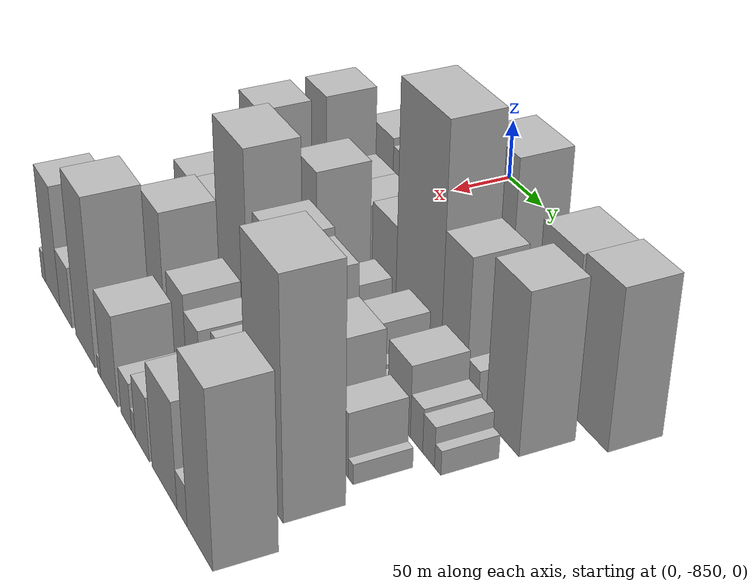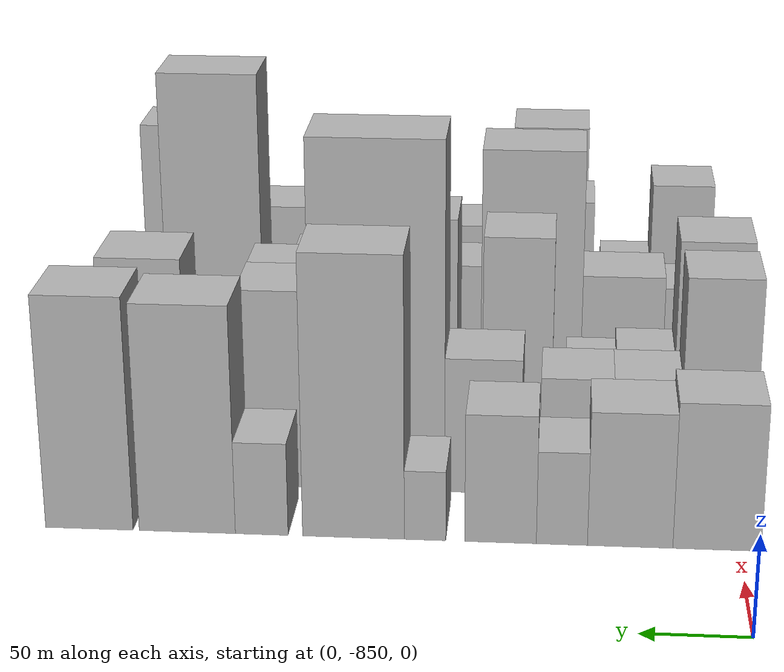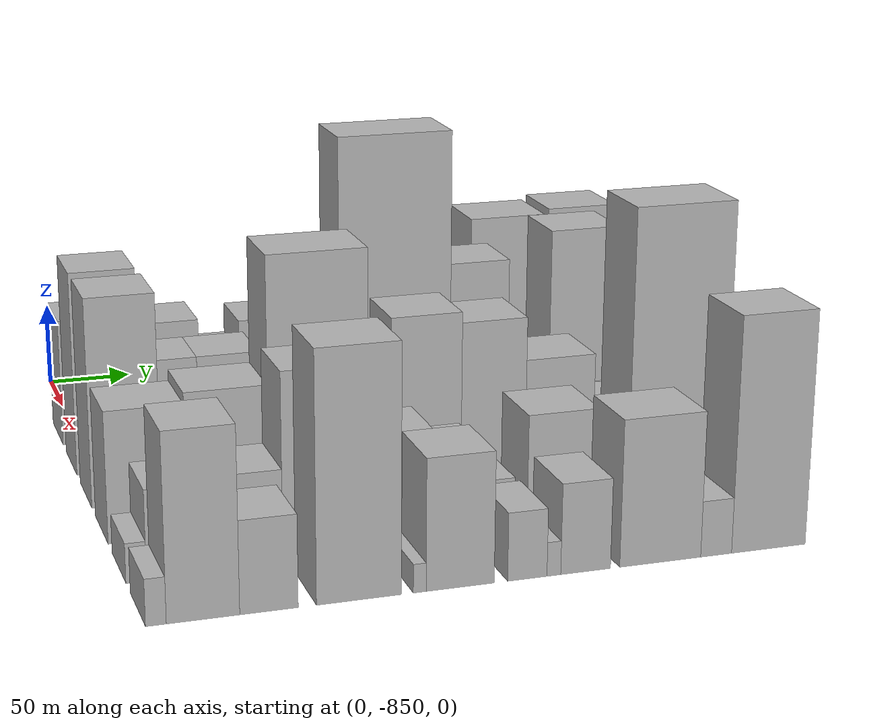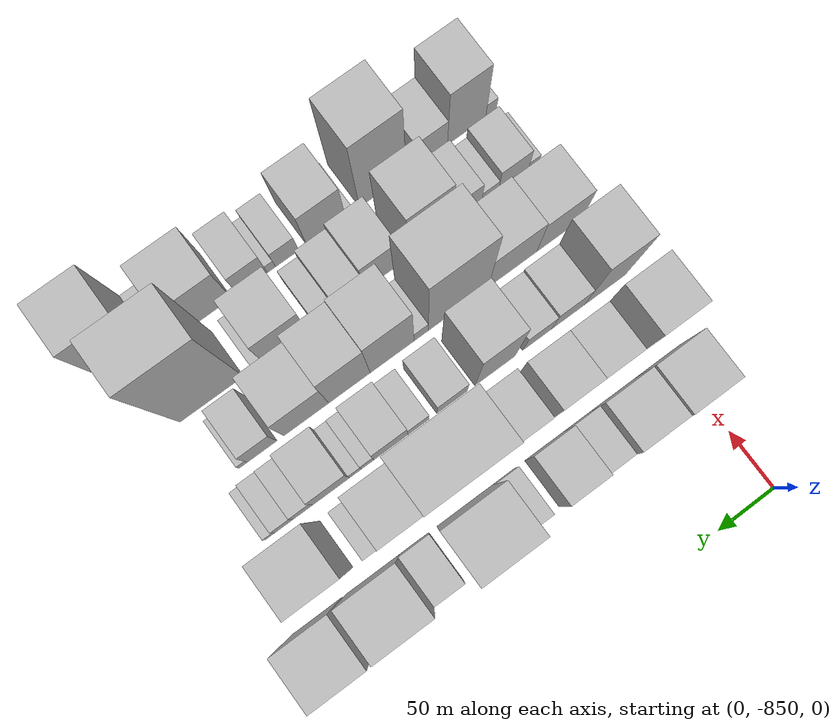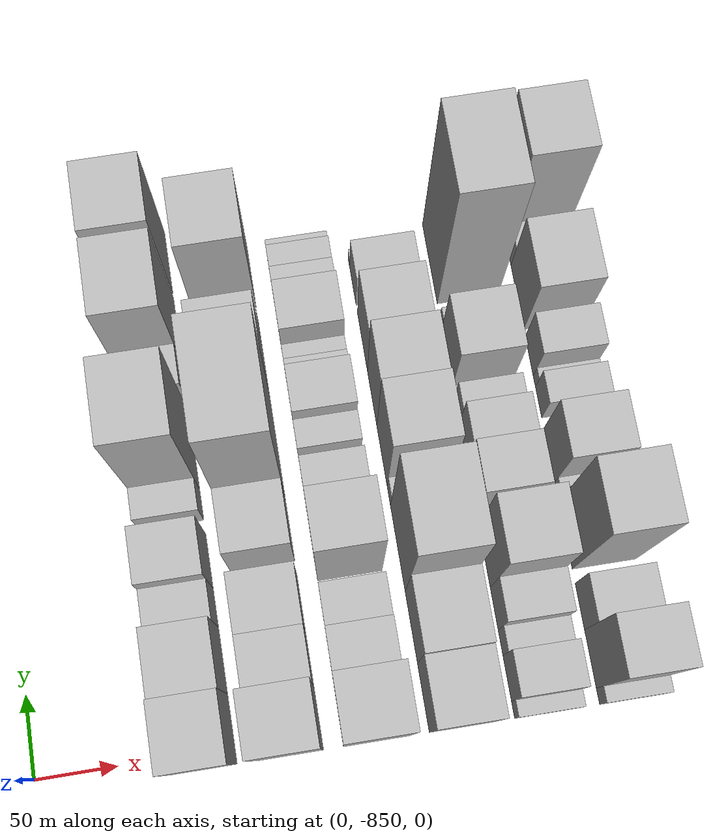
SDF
<sdf version="1.6">
 <world name="default">
  <model name="building_1">
   <static>1</static>
   <pose>100.0000 -839.2656 0 0.000000 0.000000 0.000000</pose>
   <link name="link">
    <pose>0 0 37.50 0 0 0</pose>
    <collision name="collision"><geometry><box><size>40.0000 41.4688 75.0000</size></box></geometry></collision>
    <visual name="visual">
     <cast_shadows>0</cast_shadows>
     <geometry><box><size>40.0000 41.4688 75.0000</size></box></geometry>
     <material>
      <script>
       <uri>model://HANNAS_wall/materials/scripts</uri>
       <uri>model://HANNAS_wall/materials/textures</uri>
       <name>vrc/HANNAS_wall</name>
      </script>
     </material>
    </visual>
   </link>
  </model>
  <model name="building_2">
   <static>1</static>
   <pose>100.0000 -798.3880 0 0.000000 0.000000 0.000000</pose>
   <link name="link">
    <pose>0 0 34.50 0 0 0</pose>
    <collision name="collision"><geometry><box><size>40.0000 40.2863 69.0000</size></box></geometry></collision>
    <visual name="visual">
     <cast_shadows>0</cast_shadows>
     <geometry><box><size>40.0000 40.2863 69.0000</size></box></geometry>
     <material>
      <script>
       <uri>model://HANNAS_wall/materials/scripts</uri>
       <uri>model://HANNAS_wall/materials/textures</uri>
       <name>vrc/HANNAS_wall</name>
      </script>
     </material>
    </visual>
   </link>
  </model>
  <model name="building_3">
   <static>1</static>
   <pose>100.0000 -766.1409 0 0.000000 0.000000 0.000000</pose>
   <link name="link">
    <pose>0 0 24.00 0 0 0</pose>
    <collision name="collision"><geometry><box><size>40.0000 24.2079 48.0000</size></box></geometry></collision>
    <visual name="visual">
     <cast_shadows>0</cast_shadows>
     <geometry><box><size>40.0000 24.2079 48.0000</size></box></geometry>
     <material>
      <script>
       <uri>model://HANNAS_wall/materials/scripts</uri>
       <uri>model://HANNAS_wall/materials/textures</uri>
       <name>vrc/HANNAS_wall</name>
      </script>
     </material>
    </visual>
   </link>
  </model>
  <model name="building_4">
   <static>1</static>
   <pose>100.0000 -737.0001 0 0.000000 0.000000 0.000000</pose>
   <link name="link">
    <pose>0 0 33.00 0 0 0</pose>
    <collision name="collision"><geometry><box><size>40.0000 34.0739 66.0000</size></box></geometry></collision>
    <visual name="visual">
     <cast_shadows>0</cast_shadows>
     <geometry><box><size>40.0000 34.0739 66.0000</size></box></geometry>
     <material>
      <script>
       <uri>model://HANNAS_wall/materials/scripts</uri>
       <uri>model://HANNAS_wall/materials/textures</uri>
       <name>vrc/HANNAS_wall</name>
      </script>
     </material>
    </visual>
   </link>
  </model>
  <model name="building_5">
   <static>1</static>
   <pose>100.0000 -701.0439 0 0.000000 0.000000 0.000000</pose>
   <link name="link">
    <pose>0 0 18.00 0 0 0</pose>
    <collision name="collision"><geometry><box><size>40.0000 19.8385 36.0000</size></box></geometry></collision>
    <visual name="visual">
     <cast_shadows>0</cast_shadows>
     <geometry><box><size>40.0000 19.8385 36.0000</size></box></geometry>
     <material>
      <script>
       <uri>model://HANNAS_wall/materials/scripts</uri>
       <uri>model://HANNAS_wall/materials/textures</uri>
       <name>vrc/HANNAS_wall</name>
      </script>
     </material>
    </visual>
   </link>
  </model>
  <model name="building_6">
   <static>1</static>
   <pose>100.0000 -666.7250 0 0.000000 0.000000 0.000000</pose>
   <link name="link">
    <pose>0 0 72.00 0 0 0</pose>
    <collision name="collision"><geometry><box><size>40.0000 48.7993 144.0000</size></box></geometry></collision>
    <visual name="visual">
     <cast_shadows>0</cast_shadows>
     <geometry><box><size>40.0000 48.7993 144.0000</size></box></geometry>
     <material>
      <script>
       <uri>model://HANNAS_wall/materials/scripts</uri>
       <uri>model://HANNAS_wall/materials/textures</uri>
       <name>vrc/HANNAS_wall</name>
      </script>
     </material>
    </visual>
   </link>
  </model>
  <model name="building_7">
   <static>1</static>
   <pose>100.0000 -622.5861 0 0.000000 0.000000 0.000000</pose>
   <link name="link">
    <pose>0 0 24.00 0 0 0</pose>
    <collision name="collision"><geometry><box><size>40.0000 25.4784 48.0000</size></box></geometry></collision>
    <visual name="visual">
     <cast_shadows>0</cast_shadows>
     <geometry><box><size>40.0000 25.4784 48.0000</size></box></geometry>
     <material>
      <script>
       <uri>model://HANNAS_wall/materials/scripts</uri>
       <uri>model://HANNAS_wall/materials/textures</uri>
       <name>vrc/HANNAS_wall</name>
      </script>
     </material>
    </visual>
   </link>
  </model>
  <model name="building_8">
   <static>1</static>
   <pose>100.0000 -586.5119 0 0.000000 0.000000 0.000000</pose>
   <link name="link">
    <pose>0 0 58.50 0 0 0</pose>
    <collision name="collision"><geometry><box><size>40.0000 46.6699 117.0000</size></box></geometry></collision>
    <visual name="visual">
     <cast_shadows>0</cast_shadows>
     <geometry><box><size>40.0000 46.6699 117.0000</size></box></geometry>
     <material>
      <script>
       <uri>model://HANNAS_wall/materials/scripts</uri>
       <uri>model://HANNAS_wall/materials/textures</uri>
       <name>vrc/HANNAS_wall</name>
      </script>
     </material>
    </visual>
   </link>
  </model>
  <model name="building_9">
   <static>1</static>
   <pose>100.0000 -538.8416 0 0.000000 0.000000 0.000000</pose>
   <link name="link">
    <pose>0 0 60.00 0 0 0</pose>
    <collision name="collision"><geometry><box><size>40.0000 42.6708 120.0000</size></box></geometry></collision>
    <visual name="visual">
     <cast_shadows>0</cast_shadows>
     <geometry><box><size>40.0000 42.6708 120.0000</size></box></geometry>
     <material>
      <script>
       <uri>model://HANNAS_wall/materials/scripts</uri>
       <uri>model://HANNAS_wall/materials/textures</uri>
       <name>vrc/HANNAS_wall</name>
      </script>
     </material>
    </visual>
   </link>
  </model>
  <model name="building_50">
   <static>1</static>
   <pose>152.0000 -841.6361 0 0.000000 0.000000 0.000000</pose>
   <link name="link">
    <pose>0 0 58.50 0 0 0</pose>
    <collision name="collision"><geometry><box><size>40.0000 36.7278 117.0000</size></box></geometry></collision>
    <visual name="visual">
     <cast_shadows>0</cast_shadows>
     <geometry><box><size>40.0000 36.7278 117.0000</size></box></geometry>
     <material>
      <script>
       <uri>model://HANNAS_wall/materials/scripts</uri>
       <uri>model://HANNAS_wall/materials/textures</uri>
       <name>vrc/HANNAS_wall</name>
      </script>
     </material>
    </visual>
   </link>
  </model>
  <model name="building_51">
   <static>1</static>
   <pose>152.0000 -806.7271 0 0.000000 0.000000 0.000000</pose>
   <link name="link">
    <pose>0 0 31.50 0 0 0</pose>
    <collision name="collision"><geometry><box><size>40.0000 33.0901 63.0000</size></box></geometry></collision>
    <visual name="visual">
     <cast_shadows>0</cast_shadows>
     <geometry><box><size>40.0000 33.0901 63.0000</size></box></geometry>
     <material>
      <script>
       <uri>model://HANNAS_wall/materials/scripts</uri>
       <uri>model://HANNAS_wall/materials/textures</uri>
       <name>vrc/HANNAS_wall</name>
      </script>
     </material>
    </visual>
   </link>
  </model>
  <model name="building_52">
   <static>1</static>
   <pose>152.0000 -772.2572 0 0.000000 0.000000 0.000000</pose>
   <link name="link">
    <pose>0 0 31.50 0 0 0</pose>
    <collision name="collision"><geometry><box><size>40.0000 35.8498 63.0000</size></box></geometry></collision>
    <visual name="visual">
     <cast_shadows>0</cast_shadows>
     <geometry><box><size>40.0000 35.8498 63.0000</size></box></geometry>
     <material>
      <script>
       <uri>model://HANNAS_wall/materials/scripts</uri>
       <uri>model://HANNAS_wall/materials/textures</uri>
       <name>vrc/HANNAS_wall</name>
      </script>
     </material>
    </visual>
   </link>
  </model>
  <model name="building_53">
   <static>1</static>
   <pose>152.0000 -726.2675 0 0.000000 0.000000 0.000000</pose>
   <link name="link">
    <pose>0 0 36.00 0 0 0</pose>
    <collision name="collision"><geometry><box><size>40.0000 38.1297 72.0000</size></box></geometry></collision>
    <visual name="visual">
     <cast_shadows>0</cast_shadows>
     <geometry><box><size>40.0000 38.1297 72.0000</size></box></geometry>
     <material>
      <script>
       <uri>model://HANNAS_wall/materials/scripts</uri>
       <uri>model://HANNAS_wall/materials/textures</uri>
       <name>vrc/HANNAS_wall</name>
      </script>
     </material>
    </visual>
   </link>
  </model>
  <model name="building_54">
   <static>1</static>
   <pose>152.0000 -673.6526 0 0.000000 0.000000 0.000000</pose>
   <link name="link">
    <pose>0 0 91.50 0 0 0</pose>
    <collision name="collision"><geometry><box><size>40.0000 67.1001 183.0000</size></box></geometry></collision>
    <visual name="visual">
     <cast_shadows>0</cast_shadows>
     <geometry><box><size>40.0000 67.1001 183.0000</size></box></geometry>
     <material>
      <script>
       <uri>model://HANNAS_wall/materials/scripts</uri>
       <uri>model://HANNAS_wall/materials/textures</uri>
       <name>vrc/HANNAS_wall</name>
      </script>
     </material>
    </visual>
   </link>
  </model>
  <model name="building_55">
   <static>1</static>
   <pose>152.0000 -622.2448 0 0.000000 0.000000 0.000000</pose>
   <link name="link">
    <pose>0 0 52.50 0 0 0</pose>
    <collision name="collision"><geometry><box><size>40.0000 35.7155 105.0000</size></box></geometry></collision>
    <visual name="visual">
     <cast_shadows>0</cast_shadows>
     <geometry><box><size>40.0000 35.7155 105.0000</size></box></geometry>
     <material>
      <script>
       <uri>model://HANNAS_wall/materials/scripts</uri>
       <uri>model://HANNAS_wall/materials/textures</uri>
       <name>vrc/HANNAS_wall</name>
      </script>
     </material>
    </visual>
   </link>
  </model>
  <model name="building_56">
   <static>1</static>
   <pose>152.0000 -596.3310 0 0.000000 0.000000 0.000000</pose>
   <link name="link">
    <pose>0 0 15.00 0 0 0</pose>
    <collision name="collision"><geometry><box><size>40.0000 16.1122 30.0000</size></box></geometry></collision>
    <visual name="visual">
     <cast_shadows>0</cast_shadows>
     <geometry><box><size>40.0000 16.1122 30.0000</size></box></geometry>
     <material>
      <script>
       <uri>model://HANNAS_wall/materials/scripts</uri>
       <uri>model://HANNAS_wall/materials/textures</uri>
       <name>vrc/HANNAS_wall</name>
      </script>
     </material>
    </visual>
   </link>
  </model>
  <model name="building_57">
   <static>1</static>
   <pose>152.0000 -557.2181 0 0.000000 0.000000 0.000000</pose>
   <link name="link">
    <pose>0 0 60.00 0 0 0</pose>
    <collision name="collision"><geometry><box><size>40.0000 42.1136 120.0000</size></box></geometry></collision>
    <visual name="visual">
     <cast_shadows>0</cast_shadows>
     <geometry><box><size>40.0000 42.1136 120.0000</size></box></geometry>
     <material>
      <script>
       <uri>model://HANNAS_wall/materials/scripts</uri>
       <uri>model://HANNAS_wall/materials/textures</uri>
       <name>vrc/HANNAS_wall</name>
      </script>
     </material>
    </visual>
   </link>
  </model>
  <model name="building_100">
   <static>1</static>
   <pose>204.0000 -841.0967 0 0.000000 0.000000 0.000000</pose>
   <link name="link">
    <pose>0 0 58.50 0 0 0</pose>
    <collision name="collision"><geometry><box><size>40.0000 37.8066 117.0000</size></box></geometry></collision>
    <visual name="visual">
     <cast_shadows>0</cast_shadows>
     <geometry><box><size>40.0000 37.8066 117.0000</size></box></geometry>
     <material>
      <script>
       <uri>model://HANNAS_wall/materials/scripts</uri>
       <uri>model://HANNAS_wall/materials/textures</uri>
       <name>vrc/HANNAS_wall</name>
      </script>
     </material>
    </visual>
   </link>
  </model>
  <model name="building_101">
   <static>1</static>
   <pose>204.0000 -807.2880 0 0.000000 0.000000 0.000000</pose>
   <link name="link">
    <pose>0 0 27.00 0 0 0</pose>
    <collision name="collision"><geometry><box><size>40.0000 29.8107 54.0000</size></box></geometry></collision>
    <visual name="visual">
     <cast_shadows>0</cast_shadows>
     <geometry><box><size>40.0000 29.8107 54.0000</size></box></geometry>
     <material>
      <script>
       <uri>model://HANNAS_wall/materials/scripts</uri>
       <uri>model://HANNAS_wall/materials/textures</uri>
       <name>vrc/HANNAS_wall</name>
      </script>
     </material>
    </visual>
   </link>
  </model>
  <model name="building_102">
   <static>1</static>
   <pose>204.0000 -779.4804 0 0.000000 0.000000 0.000000</pose>
   <link name="link">
    <pose>0 0 24.00 0 0 0</pose>
    <collision name="collision"><geometry><box><size>40.0000 25.8045 48.0000</size></box></geometry></collision>
    <visual name="visual">
     <cast_shadows>0</cast_shadows>
     <geometry><box><size>40.0000 25.8045 48.0000</size></box></geometry>
     <material>
      <script>
       <uri>model://HANNAS_wall/materials/scripts</uri>
       <uri>model://HANNAS_wall/materials/textures</uri>
       <name>vrc/HANNAS_wall</name>
      </script>
     </material>
    </visual>
   </link>
  </model>
  <model name="building_103">
   <static>1</static>
   <pose>204.0000 -741.5397 0 0.000000 0.000000 0.000000</pose>
   <link name="link">
    <pose>0 0 58.50 0 0 0</pose>
    <collision name="collision"><geometry><box><size>40.0000 36.0768 117.0000</size></box></geometry></collision>
    <visual name="visual">
     <cast_shadows>0</cast_shadows>
     <geometry><box><size>40.0000 36.0768 117.0000</size></box></geometry>
     <material>
      <script>
       <uri>model://HANNAS_wall/materials/scripts</uri>
       <uri>model://HANNAS_wall/materials/textures</uri>
       <name>vrc/HANNAS_wall</name>
      </script>
     </material>
    </visual>
   </link>
  </model>
  <model name="building_104">
   <static>1</static>
   <pose>204.0000 -703.0891 0 0.000000 0.000000 0.000000</pose>
   <link name="link">
    <pose>0 0 22.50 0 0 0</pose>
    <collision name="collision"><geometry><box><size>40.0000 26.8244 45.0000</size></box></geometry></collision>
    <visual name="visual">
     <cast_shadows>0</cast_shadows>
     <geometry><box><size>40.0000 26.8244 45.0000</size></box></geometry>
     <material>
      <script>
       <uri>model://HANNAS_wall/materials/scripts</uri>
       <uri>model://HANNAS_wall/materials/textures</uri>
       <name>vrc/HANNAS_wall</name>
      </script>
     </material>
    </visual>
   </link>
  </model>
  <model name="building_105">
   <static>1</static>
   <pose>204.0000 -673.4502 0 0.000000 0.000000 0.000000</pose>
   <link name="link">
    <pose>0 0 16.50 0 0 0</pose>
    <collision name="collision"><geometry><box><size>40.0000 18.4534 33.0000</size></box></geometry></collision>
    <visual name="visual">
     <cast_shadows>0</cast_shadows>
     <geometry><box><size>40.0000 18.4534 33.0000</size></box></geometry>
     <material>
      <script>
       <uri>model://HANNAS_wall/materials/scripts</uri>
       <uri>model://HANNAS_wall/materials/textures</uri>
       <name>vrc/HANNAS_wall</name>
      </script>
     </material>
    </visual>
   </link>
  </model>
  <model name="building_106">
   <static>1</static>
   <pose>204.0000 -649.2735 0 0.000000 0.000000 0.000000</pose>
   <link name="link">
    <pose>0 0 25.50 0 0 0</pose>
    <collision name="collision"><geometry><box><size>40.0000 29.9001 51.0000</size></box></geometry></collision>
    <visual name="visual">
     <cast_shadows>0</cast_shadows>
     <geometry><box><size>40.0000 29.9001 51.0000</size></box></geometry>
     <material>
      <script>
       <uri>model://HANNAS_wall/materials/scripts</uri>
       <uri>model://HANNAS_wall/materials/textures</uri>
       <name>vrc/HANNAS_wall</name>
      </script>
     </material>
    </visual>
   </link>
  </model>
  <model name="building_107">
   <static>1</static>
   <pose>204.0000 -628.8190 0 0.000000 0.000000 0.000000</pose>
   <link name="link">
    <pose>0 0 13.50 0 0 0</pose>
    <collision name="collision"><geometry><box><size>40.0000 11.0089 27.0000</size></box></geometry></collision>
    <visual name="visual">
     <cast_shadows>0</cast_shadows>
     <geometry><box><size>40.0000 11.0089 27.0000</size></box></geometry>
     <material>
      <script>
       <uri>model://HANNAS_wall/materials/scripts</uri>
       <uri>model://HANNAS_wall/materials/textures</uri>
       <name>vrc/HANNAS_wall</name>
      </script>
     </material>
    </visual>
   </link>
  </model>
  <model name="building_108">
   <static>1</static>
   <pose>204.0000 -618.1951 0 0.000000 0.000000 0.000000</pose>
   <link name="link">
    <pose>0 0 12.00 0 0 0</pose>
    <collision name="collision"><geometry><box><size>40.0000 10.2389 24.0000</size></box></geometry></collision>
    <visual name="visual">
     <cast_shadows>0</cast_shadows>
     <geometry><box><size>40.0000 10.2389 24.0000</size></box></geometry>
     <material>
      <script>
       <uri>model://HANNAS_wall/materials/scripts</uri>
       <uri>model://HANNAS_wall/materials/textures</uri>
       <name>vrc/HANNAS_wall</name>
      </script>
     </material>
    </visual>
   </link>
  </model>
  <model name="building_109">
   <static>1</static>
   <pose>204.0000 -597.1276 0 0.000000 0.000000 0.000000</pose>
   <link name="link">
    <pose>0 0 27.00 0 0 0</pose>
    <collision name="collision"><geometry><box><size>40.0000 31.8962 54.0000</size></box></geometry></collision>
    <visual name="visual">
     <cast_shadows>0</cast_shadows>
     <geometry><box><size>40.0000 31.8962 54.0000</size></box></geometry>
     <material>
      <script>
       <uri>model://HANNAS_wall/materials/scripts</uri>
       <uri>model://HANNAS_wall/materials/textures</uri>
       <name>vrc/HANNAS_wall</name>
      </script>
     </material>
    </visual>
   </link>
  </model>
  <model name="building_110">
   <static>1</static>
   <pose>204.0000 -572.6764 0 0.000000 0.000000 0.000000</pose>
   <link name="link">
    <pose>0 0 16.50 0 0 0</pose>
    <collision name="collision"><geometry><box><size>40.0000 17.0060 33.0000</size></box></geometry></collision>
    <visual name="visual">
     <cast_shadows>0</cast_shadows>
     <geometry><box><size>40.0000 17.0060 33.0000</size></box></geometry>
     <material>
      <script>
       <uri>model://HANNAS_wall/materials/scripts</uri>
       <uri>model://HANNAS_wall/materials/textures</uri>
       <name>vrc/HANNAS_wall</name>
      </script>
     </material>
    </visual>
   </link>
  </model>
  <model name="building_111">
   <static>1</static>
   <pose>204.0000 -556.3129 0 0.000000 0.000000 0.000000</pose>
   <link name="link">
    <pose>0 0 15.00 0 0 0</pose>
    <collision name="collision"><geometry><box><size>40.0000 15.7212 30.0000</size></box></geometry></collision>
    <visual name="visual">
     <cast_shadows>0</cast_shadows>
     <geometry><box><size>40.0000 15.7212 30.0000</size></box></geometry>
     <material>
      <script>
       <uri>model://HANNAS_wall/materials/scripts</uri>
       <uri>model://HANNAS_wall/materials/textures</uri>
       <name>vrc/HANNAS_wall</name>
      </script>
     </material>
    </visual>
   </link>
  </model>
  <model name="building_112">
   <static>1</static>
   <pose>204.0000 -544.2446 0 0.000000 0.000000 0.000000</pose>
   <link name="link">
    <pose>0 0 9.00 0 0 0</pose>
    <collision name="collision"><geometry><box><size>40.0000 8.4153 18.0000</size></box></geometry></collision>
    <visual name="visual">
     <cast_shadows>0</cast_shadows>
     <geometry><box><size>40.0000 8.4153 18.0000</size></box></geometry>
     <material>
      <script>
       <uri>model://HANNAS_wall/materials/scripts</uri>
       <uri>model://HANNAS_wall/materials/textures</uri>
       <name>vrc/HANNAS_wall</name>
      </script>
     </material>
    </visual>
   </link>
  </model>
  <model name="building_155">
   <static>1</static>
   <pose>256.0000 -839.3051 0 0.000000 0.000000 0.000000</pose>
   <link name="link">
    <pose>0 0 36.00 0 0 0</pose>
    <collision name="collision"><geometry><box><size>40.0000 41.3898 72.0000</size></box></geometry></collision>
    <visual name="visual">
     <cast_shadows>0</cast_shadows>
     <geometry><box><size>40.0000 41.3898 72.0000</size></box></geometry>
     <material>
      <script>
       <uri>model://HANNAS_wall/materials/scripts</uri>
       <uri>model://HANNAS_wall/materials/textures</uri>
       <name>vrc/HANNAS_wall</name>
      </script>
     </material>
    </visual>
   </link>
  </model>
  <model name="building_156">
   <static>1</static>
   <pose>256.0000 -796.6253 0 0.000000 0.000000 0.000000</pose>
   <link name="link">
    <pose>0 0 39.00 0 0 0</pose>
    <collision name="collision"><geometry><box><size>40.0000 43.9698 78.0000</size></box></geometry></collision>
    <visual name="visual">
     <cast_shadows>0</cast_shadows>
     <geometry><box><size>40.0000 43.9698 78.0000</size></box></geometry>
     <material>
      <script>
       <uri>model://HANNAS_wall/materials/scripts</uri>
       <uri>model://HANNAS_wall/materials/textures</uri>
       <name>vrc/HANNAS_wall</name>
      </script>
     </material>
    </visual>
   </link>
  </model>
  <model name="building_157">
   <static>1</static>
   <pose>256.0000 -747.5702 0 0.000000 0.000000 0.000000</pose>
   <link name="link">
    <pose>0 0 73.50 0 0 0</pose>
    <collision name="collision"><geometry><box><size>40.0000 54.1405 147.0000</size></box></geometry></collision>
    <visual name="visual">
     <cast_shadows>0</cast_shadows>
     <geometry><box><size>40.0000 54.1405 147.0000</size></box></geometry>
     <material>
      <script>
       <uri>model://HANNAS_wall/materials/scripts</uri>
       <uri>model://HANNAS_wall/materials/textures</uri>
       <name>vrc/HANNAS_wall</name>
      </script>
     </material>
    </visual>
   </link>
  </model>
  <model name="building_158">
   <static>1</static>
   <pose>256.0000 -714.0960 0 0.000000 0.000000 0.000000</pose>
   <link name="link">
    <pose>0 0 13.50 0 0 0</pose>
    <collision name="collision"><geometry><box><size>40.0000 12.8079 27.0000</size></box></geometry></collision>
    <visual name="visual">
     <cast_shadows>0</cast_shadows>
     <geometry><box><size>40.0000 12.8079 27.0000</size></box></geometry>
     <material>
      <script>
       <uri>model://HANNAS_wall/materials/scripts</uri>
       <uri>model://HANNAS_wall/materials/textures</uri>
       <name>vrc/HANNAS_wall</name>
      </script>
     </material>
    </visual>
   </link>
  </model>
  <model name="building_159">
   <static>1</static>
   <pose>256.0000 -688.1681 0 0.000000 0.000000 0.000000</pose>
   <link name="link">
    <pose>0 0 54.00 0 0 0</pose>
    <collision name="collision"><geometry><box><size>40.0000 39.0478 108.0000</size></box></geometry></collision>
    <visual name="visual">
     <cast_shadows>0</cast_shadows>
     <geometry><box><size>40.0000 39.0478 108.0000</size></box></geometry>
     <material>
      <script>
       <uri>model://HANNAS_wall/materials/scripts</uri>
       <uri>model://HANNAS_wall/materials/textures</uri>
       <name>vrc/HANNAS_wall</name>
      </script>
     </material>
    </visual>
   </link>
  </model>
  <model name="building_160">
   <static>1</static>
   <pose>256.0000 -650.3565 0 0.000000 0.000000 0.000000</pose>
   <link name="link">
    <pose>0 0 51.00 0 0 0</pose>
    <collision name="collision"><geometry><box><size>40.0000 36.5755 102.0000</size></box></geometry></collision>
    <visual name="visual">
     <cast_shadows>0</cast_shadows>
     <geometry><box><size>40.0000 36.5755 102.0000</size></box></geometry>
     <material>
      <script>
       <uri>model://HANNAS_wall/materials/scripts</uri>
       <uri>model://HANNAS_wall/materials/textures</uri>
       <name>vrc/HANNAS_wall</name>
      </script>
     </material>
    </visual>
   </link>
  </model>
  <model name="building_161">
   <static>1</static>
   <pose>256.0000 -612.3233 0 0.000000 0.000000 0.000000</pose>
   <link name="link">
    <pose>0 0 39.00 0 0 0</pose>
    <collision name="collision"><geometry><box><size>40.0000 39.4908 78.0000</size></box></geometry></collision>
    <visual name="visual">
     <cast_shadows>0</cast_shadows>
     <geometry><box><size>40.0000 39.4908 78.0000</size></box></geometry>
     <material>
      <script>
       <uri>model://HANNAS_wall/materials/scripts</uri>
       <uri>model://HANNAS_wall/materials/textures</uri>
       <name>vrc/HANNAS_wall</name>
      </script>
     </material>
    </visual>
   </link>
  </model>
  <model name="building_162">
   <static>1</static>
   <pose>256.0000 -573.8085 0 0.000000 0.000000 0.000000</pose>
   <link name="link">
    <pose>0 0 24.00 0 0 0</pose>
    <collision name="collision"><geometry><box><size>40.0000 25.5390 48.0000</size></box></geometry></collision>
    <visual name="visual">
     <cast_shadows>0</cast_shadows>
     <geometry><box><size>40.0000 25.5390 48.0000</size></box></geometry>
     <material>
      <script>
       <uri>model://HANNAS_wall/materials/scripts</uri>
       <uri>model://HANNAS_wall/materials/textures</uri>
       <name>vrc/HANNAS_wall</name>
      </script>
     </material>
    </visual>
   </link>
  </model>
  <model name="building_163">
   <static>1</static>
   <pose>256.0000 -557.4123 0 0.000000 0.000000 0.000000</pose>
   <link name="link">
    <pose>0 0 7.50 0 0 0</pose>
    <collision name="collision"><geometry><box><size>40.0000 7.2533 15.0000</size></box></geometry></collision>
    <visual name="visual">
     <cast_shadows>0</cast_shadows>
     <geometry><box><size>40.0000 7.2533 15.0000</size></box></geometry>
     <material>
      <script>
       <uri>model://HANNAS_wall/materials/scripts</uri>
       <uri>model://HANNAS_wall/materials/textures</uri>
       <name>vrc/HANNAS_wall</name>
      </script>
     </material>
    </visual>
   </link>
  </model>
  <model name="building_208">
   <static>1</static>
   <pose>308.0000 -854.8755 0 0.000000 0.000000 0.000000</pose>
   <link name="link">
    <pose>0 0 10.50 0 0 0</pose>
    <collision name="collision"><geometry><box><size>40.0000 10.2491 21.0000</size></box></geometry></collision>
    <visual name="visual">
     <cast_shadows>0</cast_shadows>
     <geometry><box><size>40.0000 10.2491 21.0000</size></box></geometry>
     <material>
      <script>
       <uri>model://HANNAS_wall/materials/scripts</uri>
       <uri>model://HANNAS_wall/materials/textures</uri>
       <name>vrc/HANNAS_wall</name>
      </script>
     </material>
    </visual>
   </link>
  </model>
  <model name="building_209">
   <static>1</static>
   <pose>308.0000 -835.9842 0 0.000000 0.000000 0.000000</pose>
   <link name="link">
    <pose>0 0 24.00 0 0 0</pose>
    <collision name="collision"><geometry><box><size>40.0000 27.5334 48.0000</size></box></geometry></collision>
    <visual name="visual">
     <cast_shadows>0</cast_shadows>
     <geometry><box><size>40.0000 27.5334 48.0000</size></box></geometry>
     <material>
      <script>
       <uri>model://HANNAS_wall/materials/scripts</uri>
       <uri>model://HANNAS_wall/materials/textures</uri>
       <name>vrc/HANNAS_wall</name>
      </script>
     </material>
    </visual>
   </link>
  </model>
  <model name="building_210">
   <static>1</static>
   <pose>308.0000 -814.4880 0 0.000000 0.000000 0.000000</pose>
   <link name="link">
    <pose>0 0 15.00 0 0 0</pose>
    <collision name="collision"><geometry><box><size>40.0000 15.4591 30.0000</size></box></geometry></collision>
    <visual name="visual">
     <cast_shadows>0</cast_shadows>
     <geometry><box><size>40.0000 15.4591 30.0000</size></box></geometry>
     <material>
      <script>
       <uri>model://HANNAS_wall/materials/scripts</uri>
       <uri>model://HANNAS_wall/materials/textures</uri>
       <name>vrc/HANNAS_wall</name>
      </script>
     </material>
    </visual>
   </link>
  </model>
  <model name="building_211">
   <static>1</static>
   <pose>308.0000 -793.6228 0 0.000000 0.000000 0.000000</pose>
   <link name="link">
    <pose>0 0 25.50 0 0 0</pose>
    <collision name="collision"><geometry><box><size>40.0000 26.2712 51.0000</size></box></geometry></collision>
    <visual name="visual">
     <cast_shadows>0</cast_shadows>
     <geometry><box><size>40.0000 26.2712 51.0000</size></box></geometry>
     <material>
      <script>
       <uri>model://HANNAS_wall/materials/scripts</uri>
       <uri>model://HANNAS_wall/materials/textures</uri>
       <name>vrc/HANNAS_wall</name>
      </script>
     </material>
    </visual>
   </link>
  </model>
  <model name="building_212">
   <static>1</static>
   <pose>308.0000 -760.6316 0 0.000000 0.000000 0.000000</pose>
   <link name="link">
    <pose>0 0 51.00 0 0 0</pose>
    <collision name="collision"><geometry><box><size>40.0000 39.7112 102.0000</size></box></geometry></collision>
    <visual name="visual">
     <cast_shadows>0</cast_shadows>
     <geometry><box><size>40.0000 39.7112 102.0000</size></box></geometry>
     <material>
      <script>
       <uri>model://HANNAS_wall/materials/scripts</uri>
       <uri>model://HANNAS_wall/materials/textures</uri>
       <name>vrc/HANNAS_wall</name>
      </script>
     </material>
    </visual>
   </link>
  </model>
  <model name="building_213">
   <static>1</static>
   <pose>308.0000 -716.6638 0 0.000000 0.000000 0.000000</pose>
   <link name="link">
    <pose>0 0 31.50 0 0 0</pose>
    <collision name="collision"><geometry><box><size>40.0000 32.2244 63.0000</size></box></geometry></collision>
    <visual name="visual">
     <cast_shadows>0</cast_shadows>
     <geometry><box><size>40.0000 32.2244 63.0000</size></box></geometry>
     <material>
      <script>
       <uri>model://HANNAS_wall/materials/scripts</uri>
       <uri>model://HANNAS_wall/materials/textures</uri>
       <name>vrc/HANNAS_wall</name>
      </script>
     </material>
    </visual>
   </link>
  </model>
  <model name="building_214">
   <static>1</static>
   <pose>308.0000 -687.4688 0 0.000000 0.000000 0.000000</pose>
   <link name="link">
    <pose>0 0 25.50 0 0 0</pose>
    <collision name="collision"><geometry><box><size>40.0000 26.1656 51.0000</size></box></geometry></collision>
    <visual name="visual">
     <cast_shadows>0</cast_shadows>
     <geometry><box><size>40.0000 26.1656 51.0000</size></box></geometry>
     <material>
      <script>
       <uri>model://HANNAS_wall/materials/scripts</uri>
       <uri>model://HANNAS_wall/materials/textures</uri>
       <name>vrc/HANNAS_wall</name>
      </script>
     </material>
    </visual>
   </link>
  </model>
  <model name="building_215">
   <static>1</static>
   <pose>308.0000 -665.7246 0 0.000000 0.000000 0.000000</pose>
   <link name="link">
    <pose>0 0 16.50 0 0 0</pose>
    <collision name="collision"><geometry><box><size>40.0000 17.3229 33.0000</size></box></geometry></collision>
    <visual name="visual">
     <cast_shadows>0</cast_shadows>
     <geometry><box><size>40.0000 17.3229 33.0000</size></box></geometry>
     <material>
      <script>
       <uri>model://HANNAS_wall/materials/scripts</uri>
       <uri>model://HANNAS_wall/materials/textures</uri>
       <name>vrc/HANNAS_wall</name>
      </script>
     </material>
    </visual>
   </link>
  </model>
  <model name="building_216">
   <static>1</static>
   <pose>308.0000 -630.6171 0 0.000000 0.000000 0.000000</pose>
   <link name="link">
    <pose>0 0 33.00 0 0 0</pose>
    <collision name="collision"><geometry><box><size>40.0000 38.8922 66.0000</size></box></geometry></collision>
    <visual name="visual">
     <cast_shadows>0</cast_shadows>
     <geometry><box><size>40.0000 38.8922 66.0000</size></box></geometry>
     <material>
      <script>
       <uri>model://HANNAS_wall/materials/scripts</uri>
       <uri>model://HANNAS_wall/materials/textures</uri>
       <name>vrc/HANNAS_wall</name>
      </script>
     </material>
    </visual>
   </link>
  </model>
  <model name="building_217">
   <static>1</static>
   <pose>308.0000 -607.0791 0 0.000000 0.000000 0.000000</pose>
   <link name="link">
    <pose>0 0 9.00 0 0 0</pose>
    <collision name="collision"><geometry><box><size>40.0000 8.1836 18.0000</size></box></geometry></collision>
    <visual name="visual">
     <cast_shadows>0</cast_shadows>
     <geometry><box><size>40.0000 8.1836 18.0000</size></box></geometry>
     <material>
      <script>
       <uri>model://HANNAS_wall/materials/scripts</uri>
       <uri>model://HANNAS_wall/materials/textures</uri>
       <name>vrc/HANNAS_wall</name>
      </script>
     </material>
    </visual>
   </link>
  </model>
  <model name="building_218">
   <static>1</static>
   <pose>308.0000 -566.2835 0 0.000000 0.000000 0.000000</pose>
   <link name="link">
    <pose>0 0 85.50 0 0 0</pose>
    <collision name="collision"><geometry><box><size>40.0000 55.4077 171.0000</size></box></geometry></collision>
    <visual name="visual">
     <cast_shadows>0</cast_shadows>
     <geometry><box><size>40.0000 55.4077 171.0000</size></box></geometry>
     <material>
      <script>
       <uri>model://HANNAS_wall/materials/scripts</uri>
       <uri>model://HANNAS_wall/materials/textures</uri>
       <name>vrc/HANNAS_wall</name>
      </script>
     </material>
    </visual>
   </link>
  </model>
  <model name="building_260">
   <static>1</static>
   <pose>360.0000 -855.0489 0 0.000000 0.000000 0.000000</pose>
   <link name="link">
    <pose>0 0 12.00 0 0 0</pose>
    <collision name="collision"><geometry><box><size>40.0000 9.9022 24.0000</size></box></geometry></collision>
    <visual name="visual">
     <cast_shadows>0</cast_shadows>
     <geometry><box><size>40.0000 9.9022 24.0000</size></box></geometry>
     <material>
      <script>
       <uri>model://HANNAS_wall/materials/scripts</uri>
       <uri>model://HANNAS_wall/materials/textures</uri>
       <name>vrc/HANNAS_wall</name>
      </script>
     </material>
    </visual>
   </link>
  </model>
  <model name="building_261">
   <static>1</static>
   <pose>360.0000 -832.4205 0 0.000000 0.000000 0.000000</pose>
   <link name="link">
    <pose>0 0 48.00 0 0 0</pose>
    <collision name="collision"><geometry><box><size>40.0000 35.3545 96.0000</size></box></geometry></collision>
    <visual name="visual">
     <cast_shadows>0</cast_shadows>
     <geometry><box><size>40.0000 35.3545 96.0000</size></box></geometry>
     <material>
      <script>
       <uri>model://HANNAS_wall/materials/scripts</uri>
       <uri>model://HANNAS_wall/materials/textures</uri>
       <name>vrc/HANNAS_wall</name>
      </script>
     </material>
    </visual>
   </link>
  </model>
  <model name="building_262">
   <static>1</static>
   <pose>360.0000 -800.4180 0 0.000000 0.000000 0.000000</pose>
   <link name="link">
    <pose>0 0 24.00 0 0 0</pose>
    <collision name="collision"><geometry><box><size>40.0000 28.6506 48.0000</size></box></geometry></collision>
    <visual name="visual">
     <cast_shadows>0</cast_shadows>
     <geometry><box><size>40.0000 28.6506 48.0000</size></box></geometry>
     <material>
      <script>
       <uri>model://HANNAS_wall/materials/scripts</uri>
       <uri>model://HANNAS_wall/materials/textures</uri>
       <name>vrc/HANNAS_wall</name>
      </script>
     </material>
    </visual>
   </link>
  </model>
  <model name="building_263">
   <static>1</static>
   <pose>360.0000 -755.7320 0 0.000000 0.000000 0.000000</pose>
   <link name="link">
    <pose>0 0 64.50 0 0 0</pose>
    <collision name="collision"><geometry><box><size>40.0000 42.7213 129.0000</size></box></geometry></collision>
    <visual name="visual">
     <cast_shadows>0</cast_shadows>
     <geometry><box><size>40.0000 42.7213 129.0000</size></box></geometry>
     <material>
      <script>
       <uri>model://HANNAS_wall/materials/scripts</uri>
       <uri>model://HANNAS_wall/materials/textures</uri>
       <name>vrc/HANNAS_wall</name>
      </script>
     </material>
    </visual>
   </link>
  </model>
  <model name="building_264">
   <static>1</static>
   <pose>360.0000 -725.0957 0 0.000000 0.000000 0.000000</pose>
   <link name="link">
    <pose>0 0 7.50 0 0 0</pose>
    <collision name="collision"><geometry><box><size>40.0000 6.5513 15.0000</size></box></geometry></collision>
    <visual name="visual">
     <cast_shadows>0</cast_shadows>
     <geometry><box><size>40.0000 6.5513 15.0000</size></box></geometry>
     <material>
      <script>
       <uri>model://HANNAS_wall/materials/scripts</uri>
       <uri>model://HANNAS_wall/materials/textures</uri>
       <name>vrc/HANNAS_wall</name>
      </script>
     </material>
    </visual>
   </link>
  </model>
  <model name="building_265">
   <static>1</static>
   <pose>360.0000 -704.2172 0 0.000000 0.000000 0.000000</pose>
   <link name="link">
    <pose>0 0 34.50 0 0 0</pose>
    <collision name="collision"><geometry><box><size>40.0000 35.2056 69.0000</size></box></geometry></collision>
    <visual name="visual">
     <cast_shadows>0</cast_shadows>
     <geometry><box><size>40.0000 35.2056 69.0000</size></box></geometry>
     <material>
      <script>
       <uri>model://HANNAS_wall/materials/scripts</uri>
       <uri>model://HANNAS_wall/materials/textures</uri>
       <name>vrc/HANNAS_wall</name>
      </script>
     </material>
    </visual>
   </link>
  </model>
  <model name="building_266">
   <static>1</static>
   <pose>360.0000 -669.2693 0 0.000000 0.000000 0.000000</pose>
   <link name="link">
    <pose>0 0 18.00 0 0 0</pose>
    <collision name="collision"><geometry><box><size>40.0000 20.6903 36.0000</size></box></geometry></collision>
    <visual name="visual">
     <cast_shadows>0</cast_shadows>
     <geometry><box><size>40.0000 20.6903 36.0000</size></box></geometry>
     <material>
      <script>
       <uri>model://HANNAS_wall/materials/scripts</uri>
       <uri>model://HANNAS_wall/materials/textures</uri>
       <name>vrc/HANNAS_wall</name>
      </script>
     </material>
    </visual>
   </link>
  </model>
  <model name="building_267">
   <static>1</static>
   <pose>360.0000 -655.2728 0 0.000000 0.000000 0.000000</pose>
   <link name="link">
    <pose>0 0 9.00 0 0 0</pose>
    <collision name="collision"><geometry><box><size>40.0000 7.3026 18.0000</size></box></geometry></collision>
    <visual name="visual">
     <cast_shadows>0</cast_shadows>
     <geometry><box><size>40.0000 7.3026 18.0000</size></box></geometry>
     <material>
      <script>
       <uri>model://HANNAS_wall/materials/scripts</uri>
       <uri>model://HANNAS_wall/materials/textures</uri>
       <name>vrc/HANNAS_wall</name>
      </script>
     </material>
    </visual>
   </link>
  </model>
  <model name="building_268">
   <static>1</static>
   <pose>360.0000 -638.3103 0 0.000000 0.000000 0.000000</pose>
   <link name="link">
    <pose>0 0 24.00 0 0 0</pose>
    <collision name="collision"><geometry><box><size>40.0000 26.6224 48.0000</size></box></geometry></collision>
    <visual name="visual">
     <cast_shadows>0</cast_shadows>
     <geometry><box><size>40.0000 26.6224 48.0000</size></box></geometry>
     <material>
      <script>
       <uri>model://HANNAS_wall/materials/scripts</uri>
       <uri>model://HANNAS_wall/materials/textures</uri>
       <name>vrc/HANNAS_wall</name>
      </script>
     </material>
    </visual>
   </link>
  </model>
  <model name="building_269">
   <static>1</static>
   <pose>360.0000 -597.8580 0 0.000000 0.000000 0.000000</pose>
   <link name="link">
    <pose>0 0 39.00 0 0 0</pose>
    <collision name="collision"><geometry><box><size>40.0000 44.2822 78.0000</size></box></geometry></collision>
    <visual name="visual">
     <cast_shadows>0</cast_shadows>
     <geometry><box><size>40.0000 44.2822 78.0000</size></box></geometry>
     <material>
      <script>
       <uri>model://HANNAS_wall/materials/scripts</uri>
       <uri>model://HANNAS_wall/materials/textures</uri>
       <name>vrc/HANNAS_wall</name>
      </script>
     </material>
    </visual>
   </link>
  </model>
  <model name="building_270">
   <static>1</static>
   <pose>360.0000 -567.1248 0 0.000000 0.000000 0.000000</pose>
   <link name="link">
    <pose>0 0 15.00 0 0 0</pose>
    <collision name="collision"><geometry><box><size>40.0000 17.1842 30.0000</size></box></geometry></collision>
    <visual name="visual">
     <cast_shadows>0</cast_shadows>
     <geometry><box><size>40.0000 17.1842 30.0000</size></box></geometry>
     <material>
      <script>
       <uri>model://HANNAS_wall/materials/scripts</uri>
       <uri>model://HANNAS_wall/materials/textures</uri>
       <name>vrc/HANNAS_wall</name>
      </script>
     </material>
    </visual>
   </link>
  </model>
  <model name="building_271">
   <static>1</static>
   <pose>360.0000 -537.7908 0 0.000000 0.000000 0.000000</pose>
   <link name="link">
    <pose>0 0 63.00 0 0 0</pose>
    <collision name="collision"><geometry><box><size>40.0000 41.4837 126.0000</size></box></geometry></collision>
    <visual name="visual">
     <cast_shadows>0</cast_shadows>
     <geometry><box><size>40.0000 41.4837 126.0000</size></box></geometry>
     <material>
      <script>
       <uri>model://HANNAS_wall/materials/scripts</uri>
       <uri>model://HANNAS_wall/materials/textures</uri>
       <name>vrc/HANNAS_wall</name>
      </script>
     </material>
    </visual>
   </link>
  </model>
 </world>
</sdf>
